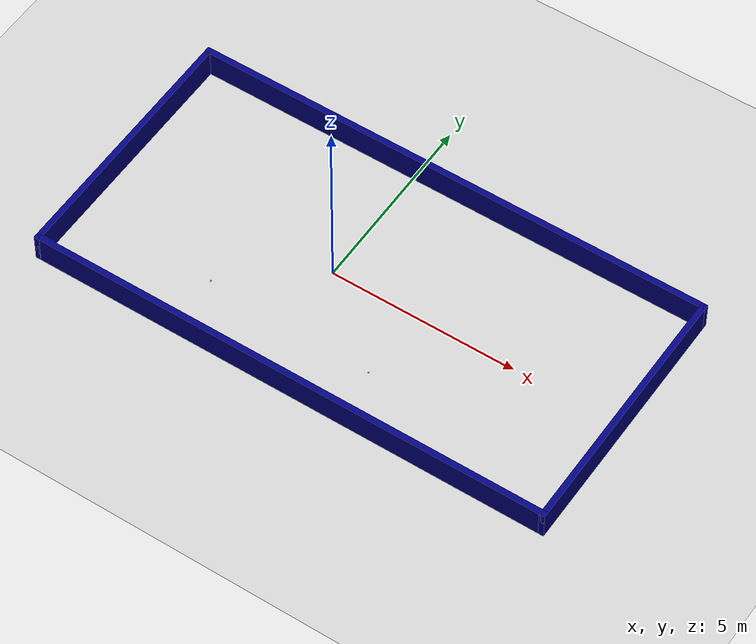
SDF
<sdf version="1.6">
 <world name="default">
  <model name="ground_plane">
   <static>1</static>
   <link name="link">
    <collision name="collision">
     <geometry><plane><normal>0 0 1</normal><size>100 100</size></plane></geometry>
     <surface><friction><ode><mu>100</mu><mu2>50</mu2></ode></friction></surface>
    </collision>
    <visual name="visual">
     <cast_shadows>0</cast_shadows>
     <geometry><plane><normal>0 0 1</normal><size>100 100</size></plane></geometry>
     <material>
      <script><uri>file://media/materials/scripts/gazebo.material</uri><name>Gazebo/Grey</name></script>
     </material>
    </visual>
   </link>
  </model>
  <model name="table_tennis_room_2">
   <pose>0.979802 0.03249 0 0 -0 0</pose>
   <link name="Wall_3">
    <collision name="Wall_3_Collision">
     <geometry><box><size>14 0.15 0.76</size></box></geometry>
     <pose>0 0 0.38 0 -0 0</pose>
    </collision>
    <visual name="Wall_3_Visual">
     <pose>0 0 0.38 0 -0 0</pose>
     <geometry><box><size>14 0.15 0.76</size></box></geometry>
     <material>
      <script><uri>file://media/materials/scripts/gazebo.material</uri><name>Gazebo/Grey</name></script>
      <ambient>0 0 0.498039 1</ambient>
     </material>
    </visual>
    <pose>0 -3.425 0 0 -0 0</pose>
   </link>
   <link name="Wall_4">
    <collision name="Wall_4_Collision">
     <geometry><box><size>7 0.15 0.76</size></box></geometry>
     <pose>0 0 0.38 0 -0 0</pose>
    </collision>
    <visual name="Wall_4_Visual">
     <pose>0 0 0.38 0 -0 0</pose>
     <geometry><box><size>7 0.15 0.76</size></box></geometry>
     <material>
      <script><uri>file://media/materials/scripts/gazebo.material</uri><name>Gazebo/Grey</name></script>
      <ambient>0 0 0.498039 1</ambient>
     </material>
    </visual>
    <pose>6.925 0 0 0 -0 1.5708</pose>
   </link>
   <link name="Wall_5">
    <collision name="Wall_5_Collision">
     <geometry><box><size>14 0.15 0.76</size></box></geometry>
     <pose>0 0 0.38 0 -0 0</pose>
    </collision>
    <visual name="Wall_5_Visual">
     <pose>0 0 0.38 0 -0 0</pose>
     <geometry><box><size>14 0.15 0.76</size></box></geometry>
     <material>
      <script><uri>file://media/materials/scripts/gazebo.material</uri><name>Gazebo/Grey</name></script>
      <ambient>0 0 0.498039 1</ambient>
     </material>
    </visual>
    <pose>0 3.425 0 0 -0 3.14159</pose>
   </link>
   <link name="Wall_6">
    <collision name="Wall_6_Collision">
     <geometry><box><size>7 0.15 0.76</size></box></geometry>
     <pose>0 0 0.38 0 -0 0</pose>
    </collision>
    <visual name="Wall_6_Visual">
     <pose>0 0 0.38 0 -0 0</pose>
     <geometry><box><size>7 0.15 0.76</size></box></geometry>
     <material>
      <script><uri>file://media/materials/scripts/gazebo.material</uri><name>Gazebo/Grey</name></script>
      <ambient>0 0 0.498039 1</ambient>
     </material>
    </visual>
    <pose>-6.925 0 0 0 0 -1.5708</pose>
   </link>
   <static>1</static>
  </model>
  <model name="table_tennis_3">
   <link name="link">
    <inertial>
     <mass>0.0027</mass>
     <inertia><ixx>0.1</ixx><ixy>0</ixy><ixz>0</ixz><iyy>0.1</iyy><iyz>0</iyz><izz>0.1</izz></inertia>
    </inertial>
    <visual name="visual">
     <geometry><sphere><radius>0.02</radius></sphere></geometry>
     <material>
      <script>
       <name>Gazebo/OrangeTransparent</name>
       <uri>file://media/materials/scripts/gazebo.material</uri>
      </script>
      <ambient>1 0.44 0 1</ambient>
      <diffuse>1 0.44 0 1</diffuse>
      <specular>0 0 0 1</specular>
      <emissive>0 0 0 1</emissive>
      <shader type="vertex"><normal_map>__default__</normal_map></shader>
     </material>
     <transparency>0.22</transparency>
    </visual>
    <collision name="collision">
     <geometry><sphere><radius>0.02</radius></sphere></geometry>
     <surface>
      <friction>
       <ode><mu>1</mu><mu2>1</mu2><fdir1>0 0 0</fdir1><slip1>0</slip1><slip2>0</slip2></ode>
       <torsional>
        <coefficient>1</coefficient>
        <patch_radius>0</patch_radius>
        <surface_radius>0</surface_radius>
        <use_patch_radius>1</use_patch_radius>
        <ode><slip>0</slip></ode>
       </torsional>
      </friction>
      <bounce><restitution_coefficient>0</restitution_coefficient><threshold>1e+06</threshold></bounce>
      <contact>
       <collide_without_contact>0</collide_without_contact>
       <collide_without_contact_bitmask>1</collide_without_contact_bitmask>
       <collide_bitmask>1</collide_bitmask>
       <ode>
        <soft_cfm>0</soft_cfm>
        <soft_erp>0.2</soft_erp>
        <kp>1e+13</kp>
        <kd>1</kd>
        <max_vel>0.01</max_vel>
        <min_depth>0</min_depth>
       </ode>
       <bullet>
        <split_impulse>1</split_impulse>
        <split_impulse_penetration_threshold>-0.01</split_impulse_penetration_threshold>
        <soft_cfm>0</soft_cfm>
        <soft_erp>0.2</soft_erp>
        <kp>1e+13</kp>
        <kd>1</kd>
       </bullet>
      </contact>
     </surface>
    </collision>
   </link>
   <static>0</static>
   <pose>-2.21963 -1.78059 0.02 0 -0 0</pose>
  </model>
  <model name="table_tennis_7">
   <link name="link">
    <inertial>
     <mass>0.0027</mass>
     <inertia><ixx>0.1</ixx><ixy>0</ixy><ixz>0</ixz><iyy>0.1</iyy><iyz>0</iyz><izz>0.1</izz></inertia>
    </inertial>
    <visual name="visual">
     <geometry><sphere><radius>0.02</radius></sphere></geometry>
     <material>
      <script>
       <name>Gazebo/OrangeTransparent</name>
       <uri>file://media/materials/scripts/gazebo.material</uri>
      </script>
      <ambient>1 0.44 0 1</ambient>
      <diffuse>1 0.44 0 1</diffuse>
      <specular>0 0 0 1</specular>
      <emissive>0 0 0 1</emissive>
      <shader type="vertex"><normal_map>__default__</normal_map></shader>
     </material>
     <transparency>0.22</transparency>
    </visual>
    <collision name="collision">
     <geometry><sphere><radius>0.02</radius></sphere></geometry>
     <surface>
      <friction>
       <ode><mu>1</mu><mu2>1</mu2><fdir1>0 0 0</fdir1><slip1>0</slip1><slip2>0</slip2></ode>
       <torsional>
        <coefficient>1</coefficient>
        <patch_radius>0</patch_radius>
        <surface_radius>0</surface_radius>
        <use_patch_radius>1</use_patch_radius>
        <ode><slip>0</slip></ode>
       </torsional>
      </friction>
      <bounce><restitution_coefficient>0</restitution_coefficient><threshold>1e+06</threshold></bounce>
      <contact>
       <collide_without_contact>0</collide_without_contact>
       <collide_without_contact_bitmask>1</collide_without_contact_bitmask>
       <collide_bitmask>1</collide_bitmask>
       <ode>
        <soft_cfm>0</soft_cfm>
        <soft_erp>0.2</soft_erp>
        <kp>1e+13</kp>
        <kd>1</kd>
        <max_vel>0.01</max_vel>
        <min_depth>0</min_depth>
       </ode>
       <bullet>
        <split_impulse>1</split_impulse>
        <split_impulse_penetration_threshold>-0.01</split_impulse_penetration_threshold>
        <soft_cfm>0</soft_cfm>
        <soft_erp>0.2</soft_erp>
        <kp>1e+13</kp>
        <kd>1</kd>
       </bullet>
      </contact>
     </surface>
    </collision>
   </link>
   <static>0</static>
   <pose>2.28577 -1.92107 0.02 0 -0 0</pose>
  </model>
 </world>
</sdf>
